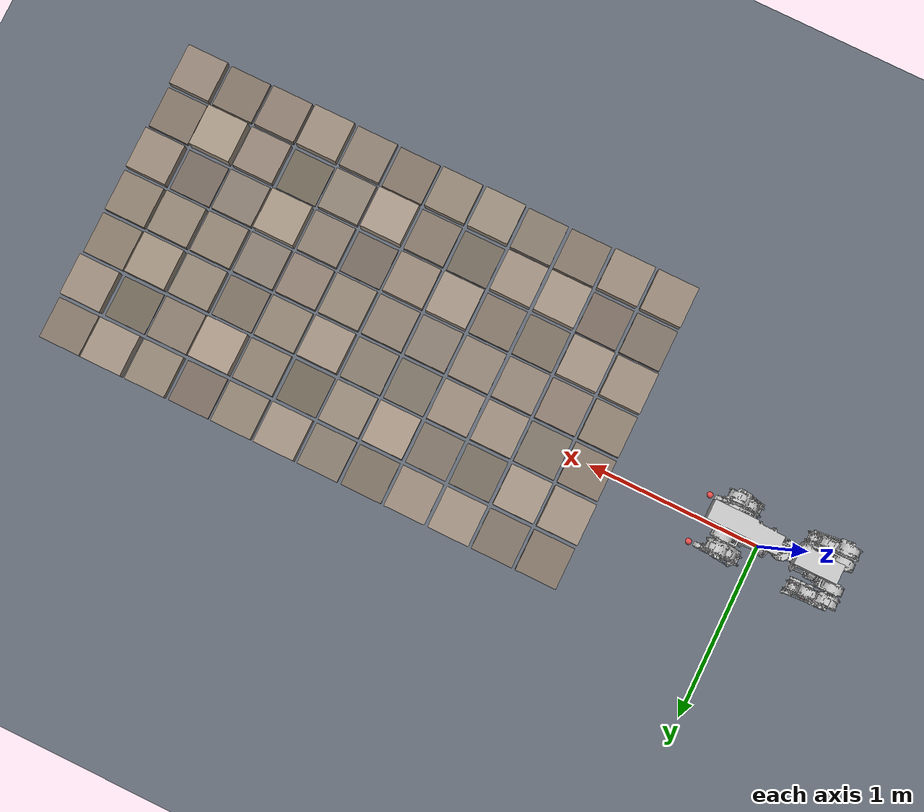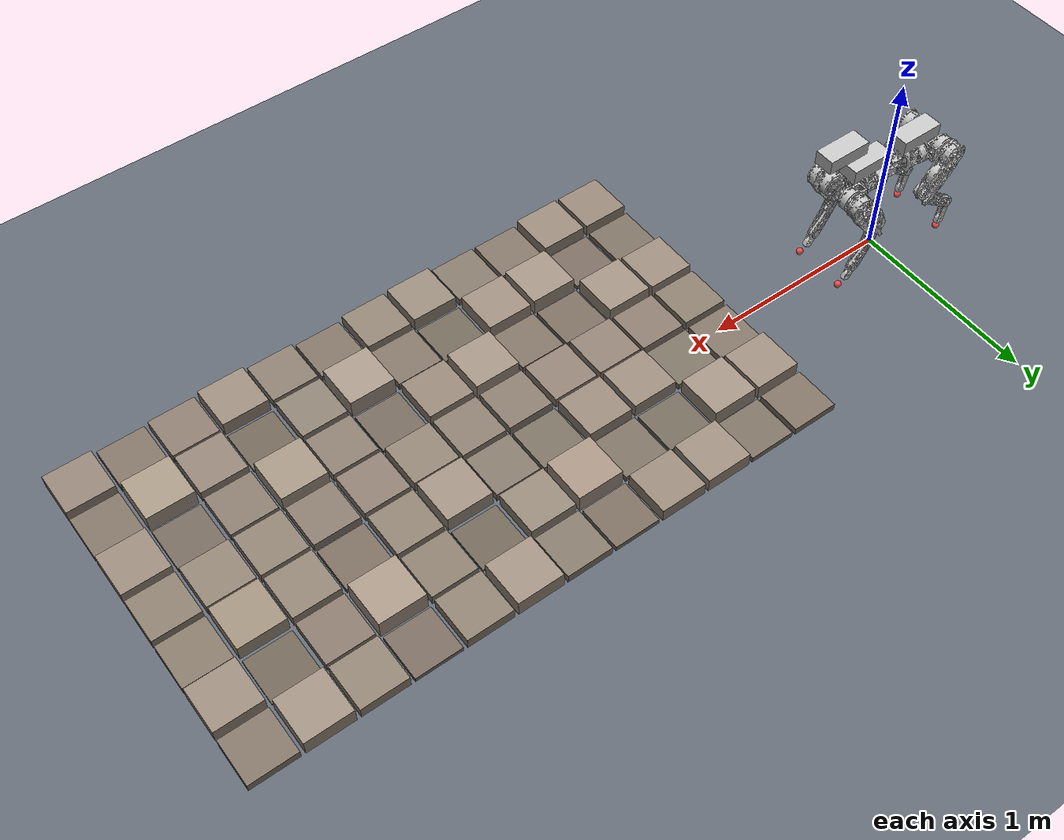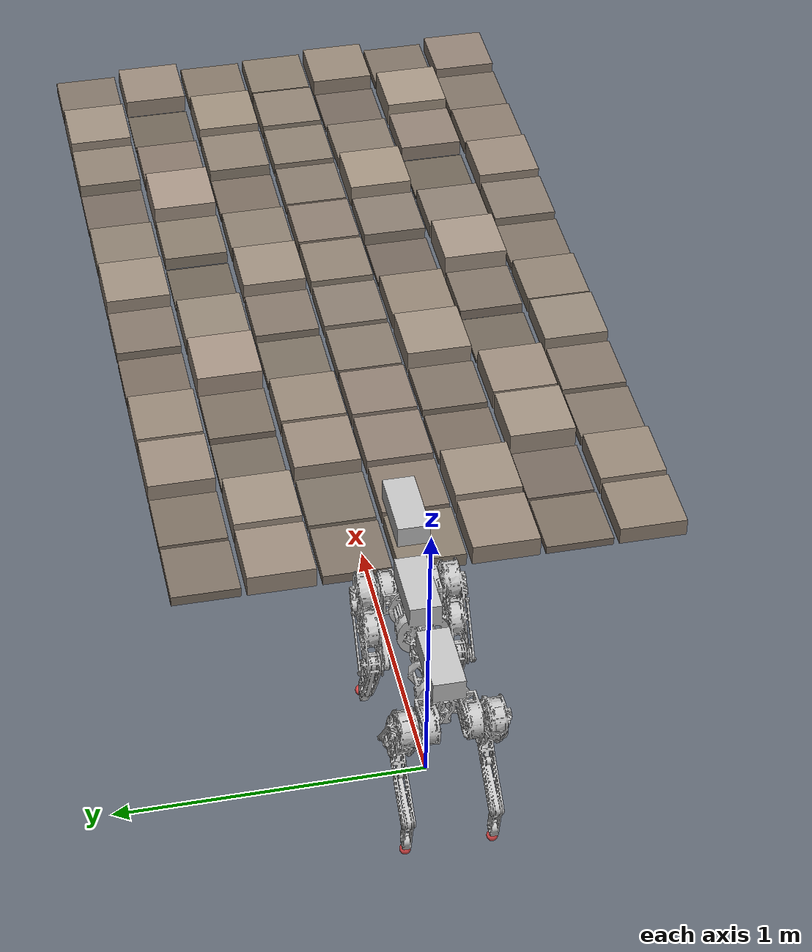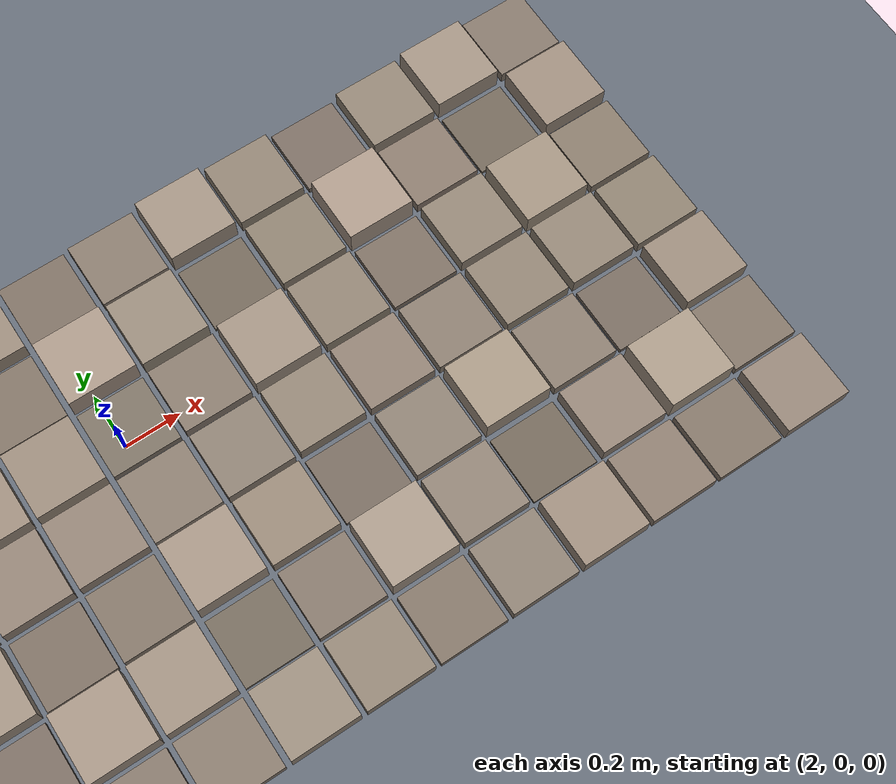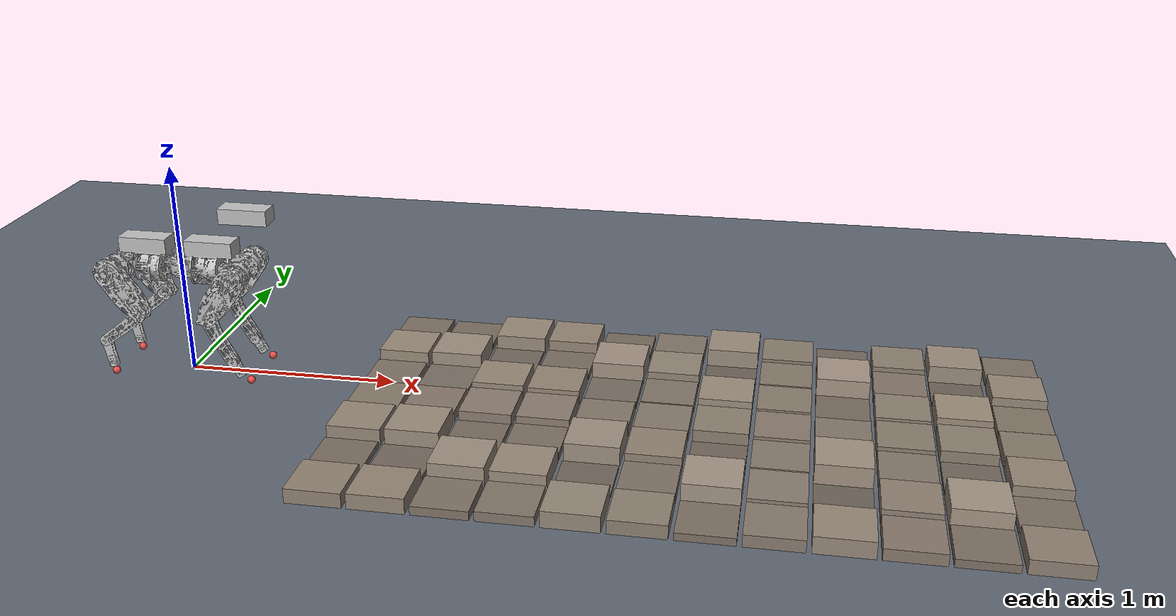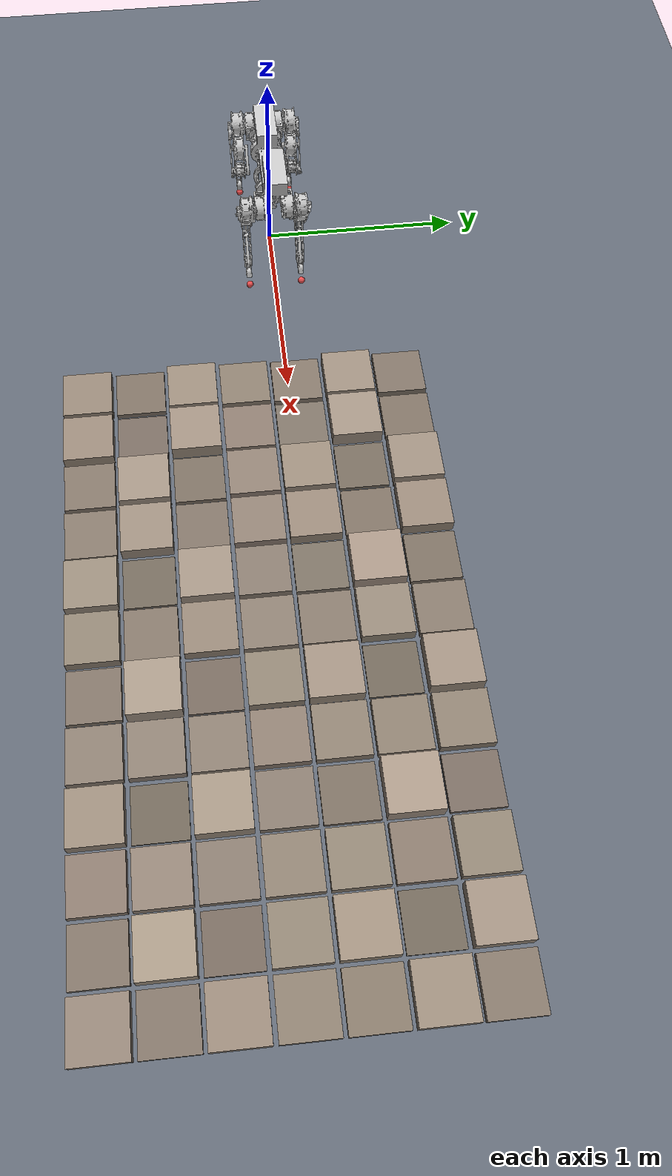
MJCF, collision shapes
<mujoco model="terrain_rough">
  <include file="quad_real_17dof_waist_sphere.mjcf"/>
  <worldbody>
    <geom name="r0_0" type="box" size="0.120 0.120 0.033" pos="1.000 -1.000 0.033" rgba="0.57 0.51 0.45 1"/>
    <geom name="r0_1" type="box" size="0.120 0.120 0.015" pos="1.000 -0.740 0.015" rgba="0.48 0.43 0.38 1"/>
    <geom name="r0_2" type="box" size="0.120 0.120 0.038" pos="1.000 -0.480 0.038" rgba="0.59 0.53 0.47 1"/>
    <geom name="r0_3" type="box" size="0.120 0.120 0.026" pos="1.000 -0.220 0.026" rgba="0.53 0.48 0.42 1"/>
    <geom name="r0_4" type="box" size="0.120 0.120 0.019" pos="1.000 0.040 0.019" rgba="0.50 0.45 0.40 1"/>
    <geom name="r0_5" type="box" size="0.120 0.120 0.040" pos="1.000 0.300 0.040" rgba="0.60 0.54 0.48 1"/>
    <geom name="r0_6" type="box" size="0.120 0.120 0.019" pos="1.000 0.560 0.019" rgba="0.49 0.44 0.39 1"/>
    <geom name="r1_0" type="box" size="0.120 0.120 0.035" pos="1.260 -1.000 0.035" rgba="0.58 0.52 0.46 1"/>
    <geom name="r1_1" type="box" size="0.120 0.120 0.011" pos="1.260 -0.740 0.011" rgba="0.46 0.41 0.37 1"/>
    <geom name="r1_2" type="box" size="0.120 0.120 0.042" pos="1.260 -0.480 0.042" rgba="0.61 0.55 0.49 1"/>
    <geom name="r1_3" type="box" size="0.120 0.120 0.025" pos="1.260 -0.220 0.025" rgba="0.53 0.47 0.42 1"/>
    <geom name="r1_4" type="box" size="0.120 0.120 0.017" pos="1.260 0.040 0.017" rgba="0.48 0.44 0.39 1"/>
    <geom name="r1_5" type="box" size="0.120 0.120 0.044" pos="1.260 0.300 0.044" rgba="0.62 0.56 0.50 1"/>
    <geom name="r1_6" type="box" size="0.120 0.120 0.016" pos="1.260 0.560 0.016" rgba="0.48 0.43 0.38 1"/>
    <geom name="r2_0" type="box" size="0.120 0.120 0.020" pos="1.520 -1.000 0.020" rgba="0.50 0.45 0.40 1"/>
    <geom name="r2_1" type="box" size="0.120 0.120 0.044" pos="1.520 -0.740 0.044" rgba="0.62 0.56 0.50 1"/>
    <geom name="r2_2" type="box" size="0.120 0.120 0.013" pos="1.520 -0.480 0.013" rgba="0.47 0.42 0.37 1"/>
    <geom name="r2_3" type="box" size="0.120 0.120 0.030" pos="1.520 -0.220 0.030" rgba="0.55 0.49 0.44 1"/>
    <geom name="r2_4" type="box" size="0.120 0.120 0.038" pos="1.520 0.040 0.038" rgba="0.59 0.53 0.47 1"/>
    <geom name="r2_5" type="box" size="0.120 0.120 0.010" pos="1.520 0.300 0.010" rgba="0.45 0.41 0.36 1"/>
    <geom name="r2_6" type="box" size="0.120 0.120 0.039" pos="1.520 0.560 0.039" rgba="0.60 0.54 0.48 1"/>
    <geom name="r3_0" type="box" size="0.120 0.120 0.022" pos="1.780 -1.000 0.022" rgba="0.51 0.46 0.41 1"/>
    <geom name="r3_1" type="box" size="0.120 0.120 0.039" pos="1.780 -0.740 0.039" rgba="0.60 0.54 0.48 1"/>
    <geom name="r3_2" type="box" size="0.120 0.120 0.017" pos="1.780 -0.480 0.017" rgba="0.49 0.44 0.39 1"/>
    <geom name="r3_3" type="box" size="0.120 0.120 0.029" pos="1.780 -0.220 0.029" rgba="0.55 0.49 0.44 1"/>
    <geom name="r3_4" type="box" size="0.120 0.120 0.035" pos="1.780 0.040 0.035" rgba="0.58 0.52 0.46 1"/>
    <geom name="r3_5" type="box" size="0.120 0.120 0.015" pos="1.780 0.300 0.015" rgba="0.48 0.43 0.38 1"/>
    <geom name="r3_6" type="box" size="0.120 0.120 0.036" pos="1.780 0.560 0.036" rgba="0.58 0.52 0.46 1"/>
    <geom name="r4_0" type="box" size="0.120 0.120 0.037" pos="2.040 -1.000 0.037" rgba="0.58 0.53 0.47 1"/>
    <geom name="r4_1" type="box" size="0.120 0.120 0.008" pos="2.040 -0.740 0.008" rgba="0.44 0.40 0.35 1"/>
    <geom name="r4_2" type="box" size="0.120 0.120 0.044" pos="2.040 -0.480 0.044" rgba="0.62 0.56 0.50 1"/>
    <geom name="r4_3" type="box" size="0.120 0.120 0.025" pos="2.040 -0.220 0.025" rgba="0.52 0.47 0.42 1"/>
    <geom name="r4_4" type="box" size="0.120 0.120 0.015" pos="2.040 0.040 0.015" rgba="0.47 0.43 0.38 1"/>
    <geom name="r4_5" type="box" size="0.120 0.120 0.048" pos="2.040 0.300 0.048" rgba="0.64 0.57 0.51 1"/>
    <geom name="r4_6" type="box" size="0.120 0.120 0.014" pos="2.040 0.560 0.014" rgba="0.47 0.42 0.37 1"/>
    <geom name="r5_0" type="box" size="0.120 0.120 0.031" pos="2.300 -1.000 0.031" rgba="0.55 0.50 0.44 1"/>
    <geom name="r5_1" type="box" size="0.120 0.120 0.021" pos="2.300 -0.740 0.021" rgba="0.50 0.45 0.40 1"/>
    <geom name="r5_2" type="box" size="0.120 0.120 0.033" pos="2.300 -0.480 0.033" rgba="0.57 0.51 0.45 1"/>
    <geom name="r5_3" type="box" size="0.120 0.120 0.026" pos="2.300 -0.220 0.026" rgba="0.53 0.48 0.43 1"/>
    <geom name="r5_4" type="box" size="0.120 0.120 0.023" pos="2.300 0.040 0.023" rgba="0.51 0.46 0.41 1"/>
    <geom name="r5_5" type="box" size="0.120 0.120 0.035" pos="2.300 0.300 0.035" rgba="0.57 0.52 0.46 1"/>
    <geom name="r5_6" type="box" size="0.120 0.120 0.023" pos="2.300 0.560 0.023" rgba="0.51 0.46 0.41 1"/>
    <geom name="r6_0" type="box" size="0.120 0.120 0.017" pos="2.560 -1.000 0.017" rgba="0.49 0.44 0.39 1"/>
    <geom name="r6_1" type="box" size="0.120 0.120 0.049" pos="2.560 -0.740 0.049" rgba="0.64 0.58 0.52 1"/>
    <geom name="r6_2" type="box" size="0.120 0.120 0.009" pos="2.560 -0.480 0.009" rgba="0.45 0.40 0.36 1"/>
    <geom name="r6_3" type="box" size="0.120 0.120 0.031" pos="2.560 -0.220 0.031" rgba="0.55 0.50 0.44 1"/>
    <geom name="r6_4" type="box" size="0.120 0.120 0.042" pos="2.560 0.040 0.042" rgba="0.61 0.55 0.49 1"/>
    <geom name="r6_5" type="box" size="0.120 0.120 0.006" pos="2.560 0.300 0.006" rgba="0.43 0.39 0.34 1"/>
    <geom name="r6_6" type="box" size="0.120 0.120 0.043" pos="2.560 0.560 0.043" rgba="0.61 0.55 0.49 1"/>
    <geom name="r7_0" type="box" size="0.120 0.120 0.027" pos="2.820 -1.000 0.027" rgba="0.53 0.48 0.43 1"/>
    <geom name="r7_1" type="box" size="0.120 0.120 0.029" pos="2.820 -0.740 0.029" rgba="0.54 0.49 0.44 1"/>
    <geom name="r7_2" type="box" size="0.120 0.120 0.026" pos="2.820 -0.480 0.026" rgba="0.53 0.48 0.43 1"/>
    <geom name="r7_3" type="box" size="0.120 0.120 0.028" pos="2.820 -0.220 0.028" rgba="0.54 0.48 0.43 1"/>
    <geom name="r7_4" type="box" size="0.120 0.120 0.028" pos="2.820 0.040 0.028" rgba="0.54 0.49 0.43 1"/>
    <geom name="r7_5" type="box" size="0.120 0.120 0.026" pos="2.820 0.300 0.026" rgba="0.53 0.48 0.42 1"/>
    <geom name="r7_6" type="box" size="0.120 0.120 0.029" pos="2.820 0.560 0.029" rgba="0.54 0.49 0.43 1"/>
    <geom name="r8_0" type="box" size="0.120 0.120 0.038" pos="3.080 -1.000 0.038" rgba="0.59 0.53 0.47 1"/>
    <geom name="r8_1" type="box" size="0.120 0.120 0.006" pos="3.080 -0.740 0.006" rgba="0.43 0.39 0.34 1"/>
    <geom name="r8_2" type="box" size="0.120 0.120 0.046" pos="3.080 -0.480 0.046" rgba="0.63 0.57 0.50 1"/>
    <geom name="r8_3" type="box" size="0.120 0.120 0.024" pos="3.080 -0.220 0.024" rgba="0.52 0.47 0.42 1"/>
    <geom name="r8_4" type="box" size="0.120 0.120 0.013" pos="3.080 0.040 0.013" rgba="0.47 0.42 0.37 1"/>
    <geom name="r8_5" type="box" size="0.120 0.120 0.050" pos="3.080 0.300 0.050" rgba="0.65 0.58 0.52 1"/>
    <geom name="r8_6" type="box" size="0.120 0.120 0.012" pos="3.080 0.560 0.012" rgba="0.46 0.41 0.37 1"/>
    <geom name="r9_0" type="box" size="0.120 0.120 0.026" pos="3.340 -1.000 0.026" rgba="0.53 0.47 0.42 1"/>
    <geom name="r9_1" type="box" size="0.120 0.120 0.032" pos="3.340 -0.740 0.032" rgba="0.56 0.50 0.45 1"/>
    <geom name="r9_2" type="box" size="0.120 0.120 0.024" pos="3.340 -0.480 0.024" rgba="0.52 0.47 0.42 1"/>
    <geom name="r9_3" type="box" size="0.120 0.120 0.028" pos="3.340 -0.220 0.028" rgba="0.54 0.49 0.43 1"/>
    <geom name="r9_4" type="box" size="0.120 0.120 0.030" pos="3.340 0.040 0.030" rgba="0.55 0.50 0.44 1"/>
    <geom name="r9_5" type="box" size="0.120 0.120 0.023" pos="3.340 0.300 0.023" rgba="0.52 0.46 0.41 1"/>
    <geom name="r9_6" type="box" size="0.120 0.120 0.030" pos="3.340 0.560 0.030" rgba="0.55 0.50 0.44 1"/>
    <geom name="r10_0" type="box" size="0.120 0.120 0.018" pos="3.600 -1.000 0.018" rgba="0.49 0.44 0.39 1"/>
    <geom name="r10_1" type="box" size="0.120 0.120 0.048" pos="3.600 -0.740 0.048" rgba="0.64 0.58 0.51 1"/>
    <geom name="r10_2" type="box" size="0.120 0.120 0.010" pos="3.600 -0.480 0.010" rgba="0.45 0.40 0.36 1"/>
    <geom name="r10_3" type="box" size="0.120 0.120 0.031" pos="3.600 -0.220 0.031" rgba="0.55 0.50 0.44 1"/>
    <geom name="r10_4" type="box" size="0.120 0.120 0.041" pos="3.600 0.040 0.041" rgba="0.61 0.55 0.48 1"/>
    <geom name="r10_5" type="box" size="0.120 0.120 0.006" pos="3.600 0.300 0.006" rgba="0.43 0.39 0.34 1"/>
    <geom name="r10_6" type="box" size="0.120 0.120 0.042" pos="3.600 0.560 0.042" rgba="0.61 0.55 0.49 1"/>
    <geom name="r11_0" type="box" size="0.120 0.120 0.032" pos="3.860 -1.000 0.032" rgba="0.56 0.50 0.45 1"/>
    <geom name="r11_1" type="box" size="0.120 0.120 0.018" pos="3.860 -0.740 0.018" rgba="0.49 0.44 0.39 1"/>
    <geom name="r11_2" type="box" size="0.120 0.120 0.036" pos="3.860 -0.480 0.036" rgba="0.58 0.52 0.46 1"/>
    <geom name="r11_3" type="box" size="0.120 0.120 0.026" pos="3.860 -0.220 0.026" rgba="0.53 0.48 0.42 1"/>
    <geom name="r11_4" type="box" size="0.120 0.120 0.021" pos="3.860 0.040 0.021" rgba="0.51 0.46 0.40 1"/>
    <geom name="r11_5" type="box" size="0.120 0.120 0.037" pos="3.860 0.300 0.037" rgba="0.59 0.53 0.47 1"/>
    <geom name="r11_6" type="box" size="0.120 0.120 0.021" pos="3.860 0.560 0.021" rgba="0.50 0.45 0.40 1"/>
  </worldbody>
</mujoco>

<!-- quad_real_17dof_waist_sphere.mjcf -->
<mujoco model="02_Leg_UFDF_260703_2">
  <compiler angle="radian" meshdir="/home/jsh/문서/jsh/simulation/quad/meshes_sim_17dof/" />
  <asset>
    <texture name="floor_tex" type="2d" builtin="checker" rgb1="0.33 0.36 0.40" rgb2="0.42 0.45 0.50" width="512" height="512" />
    <material name="floor_mat" texture="floor_tex" texuniform="true" texrepeat="12 12" reflectance="0.12" />
    <mesh name="Base" content_type="model/stl" file="Base.STL" />
    <mesh name="HL_hip_link" content_type="model/stl" file="HL_hip_link.STL" />
    <mesh name="HL_thigh_link" content_type="model/stl" file="HL_thigh_link.STL" />
    <mesh name="HL_calf_link" content_type="model/stl" file="HL_calf_link.STL" />
    <mesh name="HL_foot_link" content_type="model/stl" file="HL_foot_link.STL" />
    <mesh name="HL_foot_contact_link" content_type="model/stl" file="HL_foot_contact_link.STL" />
    <mesh name="HR_hip_link" content_type="model/stl" file="HR_hip_link.STL" />
    <mesh name="HR_thigh_link" content_type="model/stl" file="HR_thigh_link.STL" />
    <mesh name="HR_calf_link" content_type="model/stl" file="HR_calf_link.STL" />
    <mesh name="HR_foot_link" content_type="model/stl" file="HR_foot_link.STL" />
    <mesh name="HR_foot_contact_link" content_type="model/stl" file="HR_foot_contact_link.STL" />
    <mesh name="FB_waist_link" content_type="model/stl" file="FB_waist_link.STL" />
    <mesh name="FL_hip_link" content_type="model/stl" file="FL_hip_link.STL" />
    <mesh name="FL_thigh_link" content_type="model/stl" file="FL_thigh_link.STL" />
    <mesh name="FL_calf_link" content_type="model/stl" file="FL_calf_link.STL" />
    <mesh name="FL_foot_link" content_type="model/stl" file="FL_foot_link.STL" />
    <mesh name="FL_foot_contact_link" content_type="model/stl" file="FL_foot_contact_link.STL" />
    <mesh name="FR_hip_link" content_type="model/stl" file="FR_hip_link.STL" />
    <mesh name="FR_thigh_link" content_type="model/stl" file="FR_thigh_link.STL" />
    <mesh name="FR_calf_link" content_type="model/stl" file="FR_calf_link.STL" />
    <mesh name="FR_foot_link" content_type="model/stl" file="FR_foot_link.STL" />
    <mesh name="FR_foot_contact_link" content_type="model/stl" file="FR_foot_contact_link.STL" />
  </asset>
  <worldbody>
    <body name="Base" pos="0 0 0.5235">
      <freejoint name="root" />
      <inertial pos="-0.12954 -4.9268e-06 0.045617" quat="0.000189274 0.707107 -0.000482779 0.707107" mass="7.4" diaginertia="0.011565 0.010565 0.0059454" />
      <geom type="mesh" contype="0" conaffinity="0" group="1" density="0" rgba="0.75294 0.75294 0.75294 1" mesh="Base" />
      <geom type="mesh" rgba="0.75294 0.75294 0.75294 1" mesh="Base" />
      <body name="HL_hip_link" pos="-0.301 0.0225 0">
        <inertial pos="0.026196 0.039035 -5.8825e-05" quat="0.727698 -1.12194e-05 -8.00771e-06 0.685898" mass="1.3" diaginertia="0.000788485 0.000555085 0.00044966" />
        <joint name="HL_hip_joint" pos="0 0 0" axis="1 0 0" range="-0.6109 0.6109" actuatorfrcrange="-84 84" />
        <geom type="mesh" contype="0" conaffinity="0" group="1" density="0" rgba="0.75294 0.75294 0.75294 1" mesh="HL_hip_link" />
        <geom type="mesh" rgba="0.75294 0.75294 0.75294 1" mesh="HL_hip_link" />
        <body name="HL_thigh_link" pos="0 0.115 0">
          <inertial pos="0.055149 0.00079282 -0.077079" quat="0.674237 -0.213238 -0.213149 0.674167" mass="3.1" diaginertia="0.005605 0.00436141 0.00134769" />
          <joint name="HL_thigh_joint" pos="0 0 0" axis="0 1 0" range="-2.356 1.134" actuatorfrcrange="-84 84" />
          <geom type="mesh" contype="0" conaffinity="0" group="1" density="0" rgba="0.75294 0.75294 0.75294 1" mesh="HL_thigh_link" />
          <geom type="mesh" rgba="0.75294 0.75294 0.75294 1" mesh="HL_thigh_link" />
          <body name="HL_calf_link" pos="0.13192 0 -0.1884">
            <inertial pos="-0.071593 0.000126754 -0.0633446" quat="0.641055 0.29841 0.29841 0.641055" mass="0.595204" diaginertia="0.00243273 0.00232033 0.000138271" />
            <joint name="HL_calf_joint" pos="0 0 0" axis="0 1 0" range="-0.959 1.134" actuatorfrcrange="-126 126" />
            <geom type="mesh" contype="0" conaffinity="0" group="1" density="0" rgba="0.752941 0.752941 0.752941 1" mesh="HL_calf_link" />
            <geom type="mesh" rgba="0.752941 0.752941 0.752941 1" mesh="HL_calf_link" />
            <body name="HL_foot_link" pos="-0.18768 0 -0.15748">
              <inertial pos="0.0105929 -7.89238e-12 -0.0600756" quat="0.704415 -0.0616285 -0.0616283 0.704417" mass="0.202619" diaginertia="0.000300644 0.000274237 3.03295e-05" />
              <joint name="HL_foot_joint" pos="0 0 0" axis="0 1 0" range="-1.396 0.698" actuatorfrcrange="-168 168" />
              <geom type="mesh" contype="0" conaffinity="0" group="1" density="0" rgba="0.752941 0.752941 0.752941 1" mesh="HL_foot_link" />
              <geom type="mesh" rgba="0.752941 0.752941 0.752941 1" mesh="HL_foot_link" />
              <body name="HL_foot_contact_link" pos="0.0277837 0 -0.157569">
                <inertial pos="-0.000131235 1.07253e-10 0.000744242" quat="0.541675 0.45452 0.45452 0.541675" mass="0.0375462" diaginertia="1.07022e-05 8.08626e-06 7.24966e-06" />
                <geom type="mesh" contype="0" conaffinity="0" group="1" density="0" rgba="1 1 1 1" mesh="HL_foot_contact_link" />
                <geom type="mesh" rgba="1 1 1 1" mesh="HL_foot_contact_link" contype="0" conaffinity="0" />
                <geom name="HL_sphere" type="sphere" size="0.018" pos="0 0 0" rgba="0.9 0.3 0.3 1" friction="1.3 0.02 0.001" condim="3" />
              </body>
            </body>
          </body>
        </body>
      </body>
      <body name="HR_hip_link" pos="-0.301 -0.0225 0">
        <inertial pos="0.044964 -0.03664 4.8852e-05" quat="0.704132 9.93157e-06 1.28479e-05 0.710069" mass="1.4" diaginertia="0.000818289 0.000551961 0.00046473" />
        <joint name="HR_hip_joint" pos="0 0 0" axis="1 0 0" range="-0.6109 0.6109" actuatorfrcrange="-84 84" />
        <geom type="mesh" contype="0" conaffinity="0" group="1" density="0" rgba="0.75294 0.75294 0.75294 1" mesh="HR_hip_link" />
        <geom type="mesh" rgba="0.75294 0.75294 0.75294 1" mesh="HR_hip_link" />
        <body name="HR_thigh_link" pos="0 -0.115 0">
          <inertial pos="0.053568 -0.00079281 -0.078186" quat="0.674558 -0.212019 -0.212132 0.674552" mass="3.1" diaginertia="0.005605 0.00436143 0.00134767" />
          <joint name="HR_thigh_joint" pos="0 0 0" axis="0 1 0" range="-2.356 1.134" actuatorfrcrange="-84 84" />
          <geom type="mesh" contype="0" conaffinity="0" group="1" density="0" rgba="0.75294 0.75294 0.75294 1" mesh="HR_thigh_link" />
          <geom type="mesh" rgba="0.75294 0.75294 0.75294 1" mesh="HR_thigh_link" />
          <body name="HR_calf_link" pos="0.13192 0 -0.1884">
            <inertial pos="-0.071593 -0.000124046 -0.0633446" quat="0.641055 0.29841 0.29841 0.641055" mass="0.595204" diaginertia="0.00243273 0.00232033 0.000138271" />
            <joint name="HR_calf_joint" pos="0 0 0" axis="0 1 0" range="-0.959 1.134" actuatorfrcrange="-126 126" />
            <geom type="mesh" contype="0" conaffinity="0" group="1" density="0" rgba="0.752941 0.752941 0.752941 1" mesh="HR_calf_link" />
            <geom type="mesh" rgba="0.752941 0.752941 0.752941 1" mesh="HR_calf_link" />
            <body name="HR_foot_link" pos="-0.187681 0 -0.157483">
              <inertial pos="0.0105929 -7.89188e-12 -0.0600756" quat="0.704415 -0.0616285 -0.0616283 0.704417" mass="0.202619" diaginertia="0.000300644 0.000274237 3.03295e-05" />
              <joint name="HR_foot_joint" pos="0 0 0" axis="0 1 0" range="-1.396 0.698" actuatorfrcrange="-168 168" />
              <geom type="mesh" contype="0" conaffinity="0" group="1" density="0" rgba="0.752941 0.752941 0.752941 1" mesh="HR_foot_link" />
              <geom type="mesh" rgba="0.752941 0.752941 0.752941 1" mesh="HR_foot_link" />
              <body name="HR_foot_contact_link" pos="0.0277837 0 -0.157569">
                <inertial pos="-0.000131235 1.07254e-10 0.000744242" quat="0.541675 0.45452 0.45452 0.541675" mass="0.0375462" diaginertia="1.07022e-05 8.08626e-06 7.24966e-06" />
                <geom type="mesh" contype="0" conaffinity="0" group="1" density="0" rgba="1 1 1 1" mesh="HR_foot_contact_link" />
                <geom type="mesh" rgba="1 1 1 1" mesh="HR_foot_contact_link" contype="0" conaffinity="0" />
                <geom name="HR_sphere" type="sphere" size="0.018" pos="0 0 0" rgba="0.9 0.3 0.3 1" friction="1.3 0.02 0.001" condim="3" />
              </body>
            </body>
          </body>
        </body>
      </body>
      <body name="FB_waist_link">
        <inertial pos="0.21128 1.2507e-05 0.12655" quat="0.00014397 0.706912 -0.000145167 0.707302" mass="9.5" diaginertia="0.019743 0.018424 0.00768869" />
        <joint name="FB_waist_joint" pos="0 0 0" axis="0 0 1" range="-0.7854 0.7854" actuatorfrcrange="-84 84" />
        <geom type="mesh" contype="0" conaffinity="0" group="1" density="0" rgba="0.75294 0.75294 0.75294 1" mesh="FB_waist_link" />
        <geom type="mesh" rgba="0.75294 0.75294 0.75294 1" mesh="FB_waist_link" />
        <body name="FL_hip_link" pos="0.299 0.0225 0">
          <inertial pos="-0.044964 0.03664 4.8852e-05" quat="0.704132 -9.93157e-06 -1.28479e-05 0.710069" mass="1.3" diaginertia="0.000818289 0.000551961 0.00046473" />
          <joint name="FL_hip_joint" pos="0 0 0" axis="1 0 0" range="-0.6109 0.6109" actuatorfrcrange="-84 84" />
          <geom type="mesh" contype="0" conaffinity="0" group="1" density="0" rgba="0.75294 0.75294 0.75294 1" mesh="FL_hip_link" />
          <geom type="mesh" rgba="0.75294 0.75294 0.75294 1" mesh="FL_hip_link" />
          <body name="FL_thigh_link" pos="0 0.115 0">
            <inertial pos="-0.053568 0.00079281 -0.078186" quat="0.674558 0.212019 0.212132 0.674552" mass="3.1" diaginertia="0.005605 0.00436143 0.00134767" />
            <joint name="FL_thigh_joint" pos="0 0 0" axis="0 1 0" range="-2.443 1.047" actuatorfrcrange="-84 84" />
            <geom type="mesh" contype="0" conaffinity="0" group="1" density="0" rgba="0.75294 0.75294 0.75294 1" mesh="FL_thigh_link" />
            <geom type="mesh" rgba="0.75294 0.75294 0.75294 1" mesh="FL_thigh_link" />
            <body name="FL_calf_link" pos="-0.13192 -0.275 -0.1884">
              <inertial pos="0.0381147 0.275124 -0.0876662" quat="0.690447 -0.152587 -0.152587 0.690447" mass="0.595204" diaginertia="0.00243273 0.00232033 0.000138271" />
              <joint name="FL_calf_joint" pos="0 0 0" axis="0 1 0" range="-1.221 0.785" actuatorfrcrange="-126 126" />
              <geom type="mesh" contype="0" conaffinity="0" group="1" density="0" rgba="0.752941 0.752941 0.752941 1" mesh="FL_calf_link" />
              <geom type="mesh" rgba="0.752941 0.752941 0.752941 1" mesh="FL_calf_link" />
              <body name="FL_foot_link" pos="0.10354 0.275 -0.22205">
                <inertial pos="0.0165092 -1.18803e-11 -0.0285948" quat="0.683002 -0.183015 -0.18301 0.683023" mass="0.135769" diaginertia="8.92406e-05 7.12696e-05 2.11402e-05" />
                <joint name="FL_foot_joint" pos="0 0 0" axis="0 1 0" range="-0.785 1.571" actuatorfrcrange="-168 168" />
                <geom type="mesh" contype="0" conaffinity="0" group="1" density="0" rgba="0.752941 0.752941 0.752941 1" mesh="FL_foot_link" />
                <geom type="mesh" rgba="0.752941 0.752941 0.752941 1" mesh="FL_foot_link" />
                <body name="FL_foot_contact_link" pos="0.079064 0 -0.0871429">
                  <inertial pos="-0.00627719 -9.99837e-05 0.00215514" quat="0.531362 0.466535 0.466508 0.531385" mass="0.0917377" diaginertia="4.39469e-05 4.3319e-05 2.23667e-05" />
                  <geom type="mesh" contype="0" conaffinity="0" group="1" density="0" rgba="1 1 1 1" mesh="FL_foot_contact_link" />
                  <geom type="mesh" rgba="1 1 1 1" mesh="FL_foot_contact_link" contype="0" conaffinity="0" />
                  <geom name="FL_sphere" type="sphere" size="0.018" pos="0 0 0" rgba="0.9 0.3 0.3 1" friction="1.3 0.02 0.001" condim="3" />
                </body>
              </body>
            </body>
          </body>
        </body>
        <body name="FR_hip_link" pos="0.299 -0.0225 0">
          <inertial pos="-0.026196 -0.039035 -5.8825e-05" quat="0.727698 1.12194e-05 8.00771e-06 0.685898" mass="1.4" diaginertia="0.000788485 0.000555085 0.00044966" />
          <joint name="FR_hip_joint" pos="0 0 0" axis="1 0 0" range="-0.6109 0.6109" actuatorfrcrange="-84 84" />
          <geom type="mesh" contype="0" conaffinity="0" group="1" density="0" rgba="0.75294 0.75294 0.75294 1" mesh="FR_hip_link" />
          <geom type="mesh" rgba="0.75294 0.75294 0.75294 1" mesh="FR_hip_link" />
          <body name="FR_thigh_link" pos="0 -0.115 0">
            <inertial pos="-0.055149 -0.00079282 -0.077079" quat="0.674237 0.213238 0.213149 0.674167" mass="3.1" diaginertia="0.005605 0.00436141 0.00134769" />
            <joint name="FR_thigh_joint" pos="0 0 0" axis="0 1 0" range="-2.443 1.047" actuatorfrcrange="-84 84" />
            <geom type="mesh" contype="0" conaffinity="0" group="1" density="0" rgba="0.75294 0.75294 0.75294 1" mesh="FR_thigh_link" />
            <geom type="mesh" rgba="0.75294 0.75294 0.75294 1" mesh="FR_thigh_link" />
            <body name="FR_calf_link" pos="-0.13192 0 -0.1884">
              <inertial pos="0.0381147 -0.000126754 -0.0876662" quat="0.690447 -0.152587 -0.152587 0.690447" mass="0.595204" diaginertia="0.00243273 0.00232033 0.000138271" />
              <joint name="FR_calf_joint" pos="0 0 0" axis="0 1 0" range="-1.221 0.785" actuatorfrcrange="-126 126" />
              <geom type="mesh" contype="0" conaffinity="0" group="1" density="0" rgba="0.752941 0.752941 0.752941 1" mesh="FR_calf_link" />
              <geom type="mesh" rgba="0.752941 0.752941 0.752941 1" mesh="FR_calf_link" />
              <body name="FR_foot_link" pos="0.10354 0 -0.22205">
                <inertial pos="0.0165092 -1.18804e-11 -0.0285948" quat="0.683002 -0.183015 -0.18301 0.683023" mass="0.135769" diaginertia="8.92406e-05 7.12696e-05 2.11402e-05" />
                <joint name="FR_foot_joint" pos="0 0 0" axis="0 1 0" range="-0.785 1.571" actuatorfrcrange="-168 168" />
                <geom type="mesh" contype="0" conaffinity="0" group="1" density="0" rgba="0.752941 0.752941 0.752941 1" mesh="FR_foot_link" />
                <geom type="mesh" rgba="0.752941 0.752941 0.752941 1" mesh="FR_foot_link" />
                <body name="FR_foot_contact_link" pos="0.079064 0 -0.0871429">
                  <inertial pos="-0.00627719 -9.99837e-05 0.00215514" quat="0.531362 0.466535 0.466508 0.531385" mass="0.0917377" diaginertia="4.39469e-05 4.3319e-05 2.23667e-05" />
                  <geom type="mesh" contype="0" conaffinity="0" group="1" density="0" rgba="1 1 1 1" mesh="FR_foot_contact_link" />
                  <geom type="mesh" rgba="1 1 1 1" mesh="FR_foot_contact_link" contype="0" conaffinity="0" />
                  <geom name="FR_sphere" type="sphere" size="0.018" pos="0 0 0" rgba="0.9 0.3 0.3 1" friction="1.3 0.02 0.001" condim="3" />
                </body>
              </body>
            </body>
          </body>
        </body>
      </body>
    </body>
    <geom name="floor" type="plane" size="5 5 0.1" material="floor_mat" />
    <light pos="0 0 3" dir="0 0 -1" />
  </worldbody>
  <option timestep="0.002" gravity="0 0 -9.81" />
  <default>
    <geom friction="1.3 0.02 0.001" condim="3" />
    <motor ctrllimited="true" ctrlrange="-200 200" />
  </default>
  <actuator>
    <motor joint="HL_hip_joint" name="HL_hip" />
    <motor joint="HL_thigh_joint" name="HL_thigh" />
    <motor joint="HL_calf_joint" name="HL_calf" />
    <motor joint="HL_foot_joint" name="HL_foot" />
    <motor joint="HR_hip_joint" name="HR_hip" />
    <motor joint="HR_thigh_joint" name="HR_thigh" />
    <motor joint="HR_calf_joint" name="HR_calf" />
    <motor joint="HR_foot_joint" name="HR_foot" />
    <motor joint="FB_waist_joint" name="FB_waist" />
    <motor joint="FL_hip_joint" name="FL_hip" />
    <motor joint="FL_thigh_joint" name="FL_thigh" />
    <motor joint="FL_calf_joint" name="FL_calf" />
    <motor joint="FL_foot_joint" name="FL_foot" />
    <motor joint="FR_hip_joint" name="FR_hip" />
    <motor joint="FR_thigh_joint" name="FR_thigh" />
    <motor joint="FR_calf_joint" name="FR_calf" />
    <motor joint="FR_foot_joint" name="FR_foot" />
  </actuator>
</mujoco>
